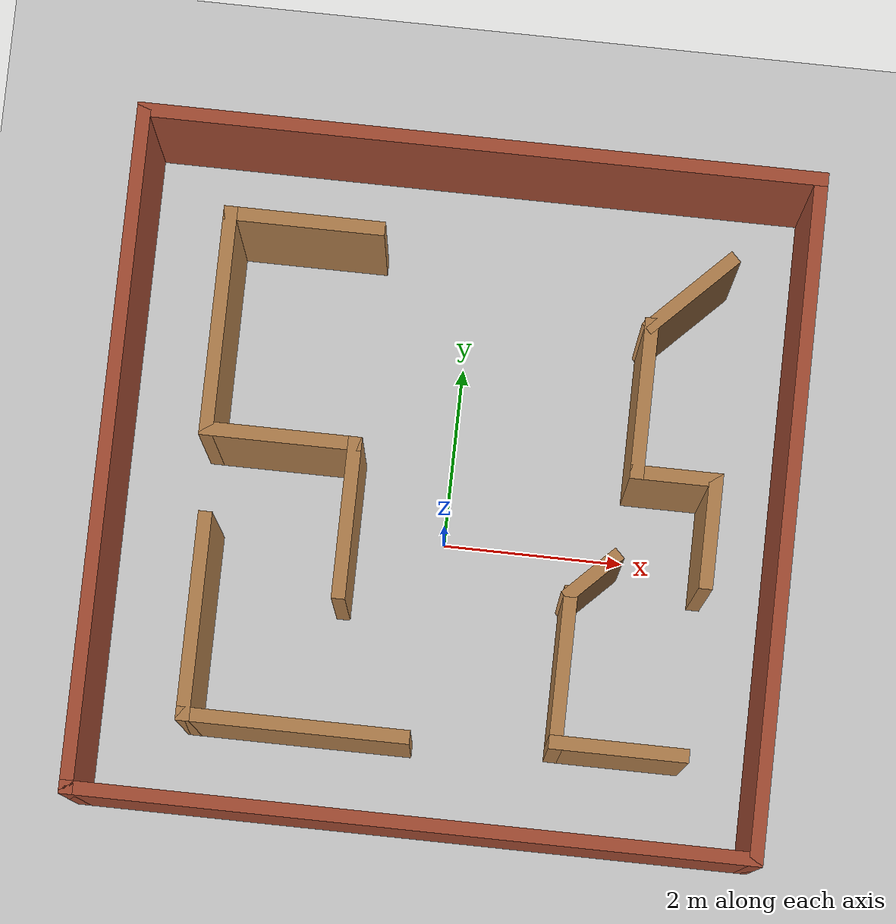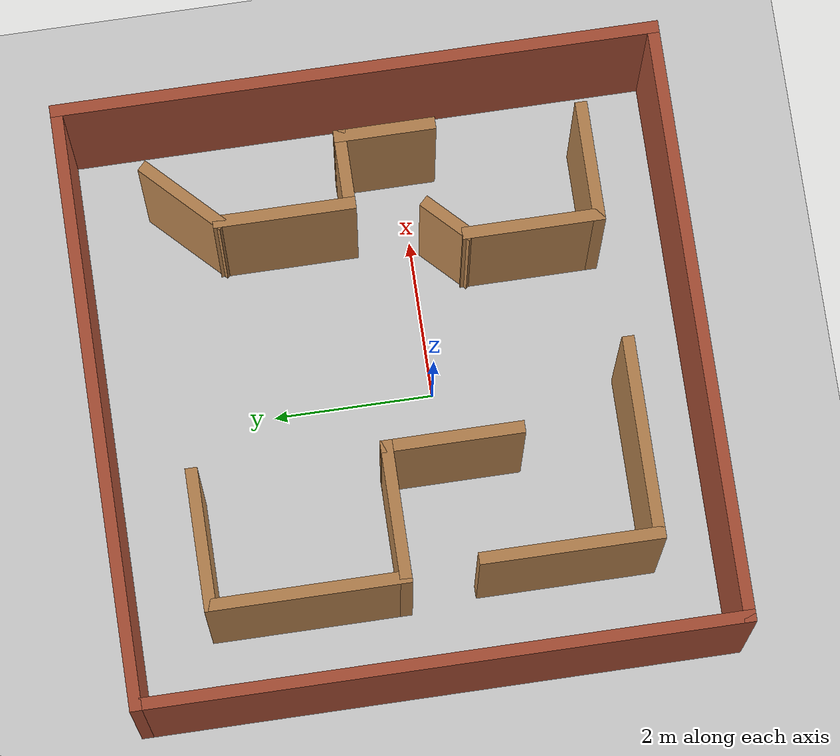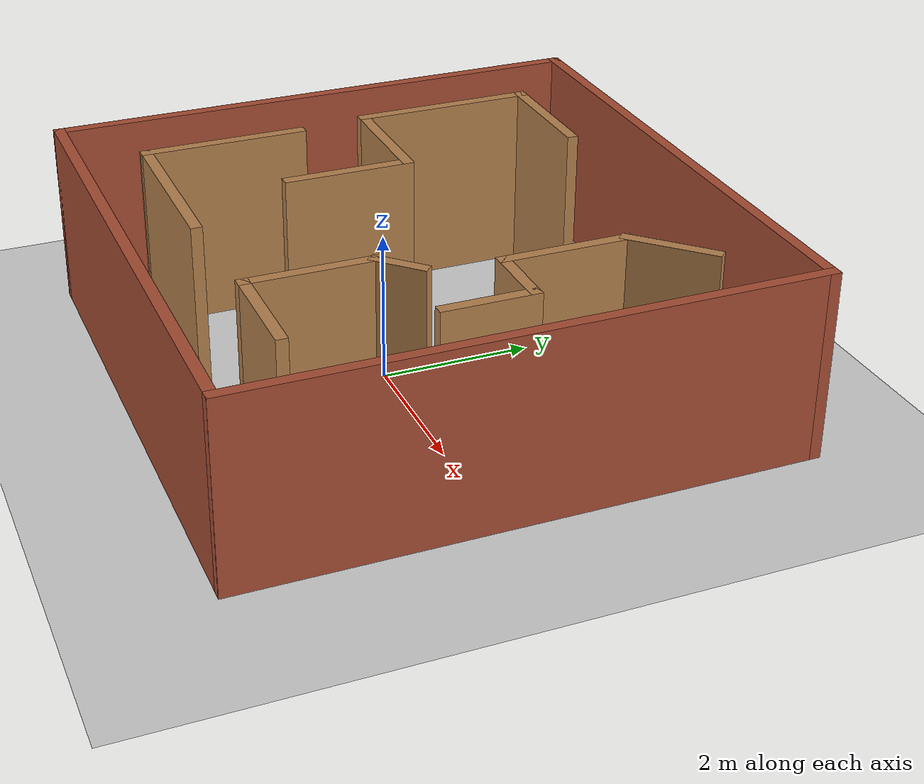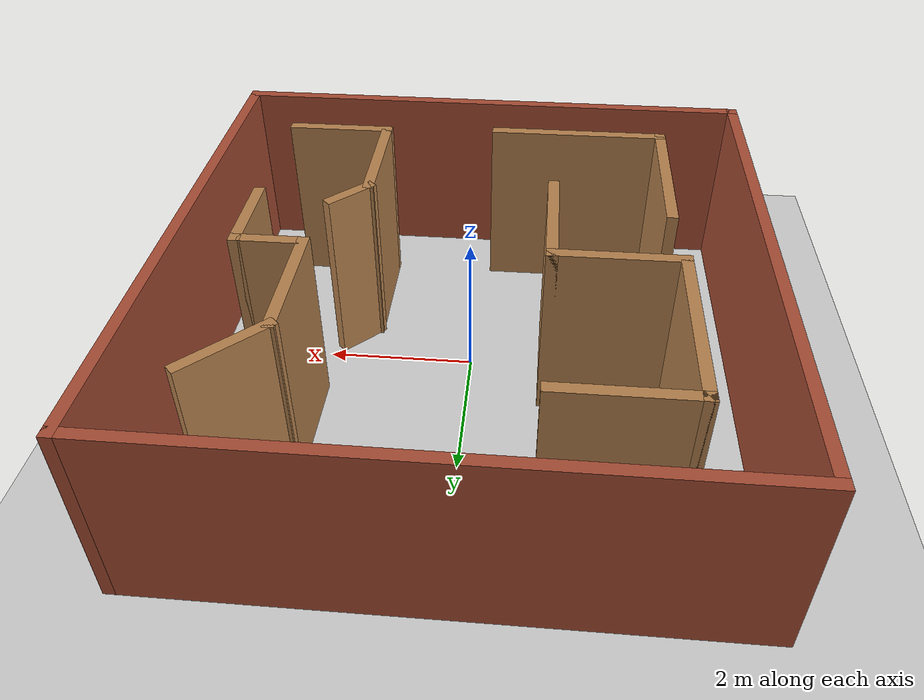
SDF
<sdf version="1.7">
 <world name="default">
  <light name="sun" type="directional">
   <pose>0 0 10 0 -0 0</pose>
   <diffuse>0.8 0.8 0.8 1</diffuse>
   <specular>0.2 0.2 0.2 1</specular>
   <attenuation>
    <range>1000</range>
    <constant>0.9</constant>
    <linear>0.01</linear>
    <quadratic>0.001</quadratic>
   </attenuation>
   <direction>-0.5 0.1 -0.9</direction>
   <spot><inner_angle>0</inner_angle><outer_angle>0</outer_angle><falloff>0</falloff></spot>
  </light>
  <model name="ground_plane">
   <static>1</static>
   <link name="link">
    <collision name="collision">
     <geometry><plane><normal>0 0 1</normal><size>100 100</size></plane></geometry>
     <surface><friction><ode><mu>100</mu><mu2>50</mu2></ode></friction></surface>
    </collision>
    <visual name="visual">
     <cast_shadows>0</cast_shadows>
     <geometry><plane><normal>0 0 1</normal><size>100 100</size></plane></geometry>
     <material>
      <script><uri>file://media/materials/scripts/gazebo.material</uri><name>Gazebo/Grey</name></script>
     </material>
    </visual>
   </link>
  </model>
  <gravity>0 0 -9.8</gravity>
  <magnetic_field>6e-06 2.3e-05 -4.2e-05</magnetic_field>
  <atmosphere type="adiabatic"/>
  <physics type="ode">
   <max_step_size>0.001</max_step_size>
   <real_time_factor>1</real_time_factor>
   <real_time_update_rate>1000</real_time_update_rate>
  </physics>
  <scene><ambient>0.4 0.4 0.4 1</ambient><background>0.7 0.7 0.7 1</background><shadows>1</shadows></scene>
  <audio><device>default</device></audio>
  <spherical_coordinates>
   <surface_model>EARTH_WGS84</surface_model>
   <latitude_deg>0</latitude_deg>
   <longitude_deg>0</longitude_deg>
   <elevation>0</elevation>
   <heading_deg>0</heading_deg>
  </spherical_coordinates>
  <model name="custom_world_2">
   <pose>-0.019893 0.439121 0 0 -0 0</pose>
   <link name="Wall_0">
    <collision name="Wall_0_Collision">
     <geometry><box><size>7.5 0.15 2.5</size></box></geometry>
     <pose>0 0 1.25 0 -0 0</pose>
    </collision>
    <visual name="Wall_0_Visual">
     <pose>0 0 1.25 0 -0 0</pose>
     <geometry><box><size>7.5 0.15 2.5</size></box></geometry>
     <material>
      <script><uri>file://media/materials/scripts/gazebo.material</uri><name>Gazebo/Bricks</name></script>
      <ambient>1 1 1 1</ambient>
     </material>
     <meta><layer>0</layer></meta>
    </visual>
    <pose>0 -3.675 0 0 -0 0</pose>
   </link>
   <link name="Wall_1">
    <collision name="Wall_1_Collision">
     <geometry><box><size>7.5 0.15 2.5</size></box></geometry>
     <pose>0 0 1.25 0 -0 0</pose>
    </collision>
    <visual name="Wall_1_Visual">
     <pose>0 0 1.25 0 -0 0</pose>
     <geometry><box><size>7.5 0.15 2.5</size></box></geometry>
     <material>
      <script><uri>file://media/materials/scripts/gazebo.material</uri><name>Gazebo/Bricks</name></script>
      <ambient>1 1 1 1</ambient>
     </material>
     <meta><layer>0</layer></meta>
    </visual>
    <pose>3.675 0 0 0 -0 1.5708</pose>
   </link>
   <link name="Wall_14">
    <collision name="Wall_14_Collision">
     <geometry><box><size>2.5 0.15 2.5</size></box></geometry>
     <pose>0 0 1.25 0 -0 0</pose>
    </collision>
    <visual name="Wall_14_Visual">
     <pose>0 0 1.25 0 -0 0</pose>
     <geometry><box><size>2.5 0.15 2.5</size></box></geometry>
     <material>
      <script><uri>file://media/materials/scripts/gazebo.material</uri><name>Gazebo/Wood</name></script>
      <ambient>1 1 1 1</ambient>
     </material>
     <meta><layer>0</layer></meta>
    </visual>
    <pose>-2.62302 1.46619 0 0 -0 1.5708</pose>
   </link>
   <link name="Wall_15">
    <collision name="Wall_15_Collision">
     <geometry><box><size>1.75 0.15 2.5</size></box></geometry>
     <pose>0 0 1.25 0 -0 0</pose>
    </collision>
    <visual name="Wall_15_Visual">
     <pose>0 0 1.25 0 -0 0</pose>
     <geometry><box><size>1.75 0.15 2.5</size></box></geometry>
     <material>
      <script><uri>file://media/materials/scripts/gazebo.material</uri><name>Gazebo/Wood</name></script>
      <ambient>1 1 1 1</ambient>
     </material>
     <meta><layer>0</layer></meta>
    </visual>
    <pose>-1.82302 2.64119 0 0 -0 0</pose>
   </link>
   <link name="Wall_17">
    <collision name="Wall_17_Collision">
     <geometry><box><size>2.25 0.15 2.5</size></box></geometry>
     <pose>0 0 1.25 0 -0 0</pose>
    </collision>
    <visual name="Wall_17_Visual">
     <pose>0 0 1.25 0 -0 0</pose>
     <geometry><box><size>2.25 0.15 2.5</size></box></geometry>
     <material>
      <script><uri>file://media/materials/scripts/gazebo.material</uri><name>Gazebo/Wood</name></script>
      <ambient>1 1 1 1</ambient>
     </material>
     <meta><layer>0</layer></meta>
    </visual>
    <pose>-2.53125 -1.72343 0 0 -0 -1.5708</pose>
   </link>
   <link name="Wall_18">
    <collision name="Wall_18_Collision">
     <geometry><box><size>2.5 0.15 2.5</size></box></geometry>
     <pose>0 0 1.25 0 -0 0</pose>
    </collision>
    <visual name="Wall_18_Visual">
     <pose>0 0 1.25 0 -0 0</pose>
     <geometry><box><size>2.5 0.15 2.5</size></box></geometry>
     <material>
      <script><uri>file://media/materials/scripts/gazebo.material</uri><name>Gazebo/Wood</name></script>
      <ambient>1 1 1 1</ambient>
     </material>
     <meta><layer>0</layer></meta>
    </visual>
    <pose>-1.35625 -2.77343 0 0 -0 0</pose>
   </link>
   <link name="Wall_2">
    <collision name="Wall_2_Collision">
     <geometry><box><size>7.5 0.15 2.5</size></box></geometry>
     <pose>0 0 1.25 0 -0 0</pose>
    </collision>
    <visual name="Wall_2_Visual">
     <pose>0 0 1.25 0 -0 0</pose>
     <geometry><box><size>7.5 0.15 2.5</size></box></geometry>
     <material>
      <script><uri>file://media/materials/scripts/gazebo.material</uri><name>Gazebo/Bricks</name></script>
      <ambient>1 1 1 1</ambient>
     </material>
     <meta><layer>0</layer></meta>
    </visual>
    <pose>0 3.675 0 0 -0 3.14159</pose>
   </link>
   <link name="Wall_21">
    <collision name="Wall_21_Collision">
     <geometry><box><size>1.25 0.15 2.5</size></box></geometry>
     <pose>0 0 1.25 0 -0 0</pose>
    </collision>
    <visual name="Wall_21_Visual">
     <pose>0 0 1.25 0 -0 0</pose>
     <geometry><box><size>1.25 0.15 2.5</size></box></geometry>
     <material>
      <script><uri>file://media/materials/scripts/gazebo.material</uri><name>Gazebo/Wood</name></script>
      <ambient>1 1 1 1</ambient>
     </material>
     <meta><layer>0</layer></meta>
    </visual>
    <pose>2.39988 2.2916 0 0 -0 -2.35619</pose>
   </link>
   <link name="Wall_22">
    <collision name="Wall_22_Collision">
     <geometry><box><size>1.75 0.15 2.5</size></box></geometry>
     <pose>0 0 1.25 0 -0 0</pose>
    </collision>
    <visual name="Wall_22_Visual">
     <pose>0 0 1.25 0 -0 0</pose>
     <geometry><box><size>1.75 0.15 2.5</size></box></geometry>
     <material>
      <script><uri>file://media/materials/scripts/gazebo.material</uri><name>Gazebo/Wood</name></script>
      <ambient>1 1 1 1</ambient>
     </material>
     <meta><layer>0</layer></meta>
    </visual>
    <pose>2.01097 1.10269 0 0 -0 -1.5708</pose>
   </link>
   <link name="Wall_23">
    <collision name="Wall_23_Collision">
     <geometry><box><size>1 0.15 2.5</size></box></geometry>
     <pose>0 0 1.25 0 -0 0</pose>
    </collision>
    <visual name="Wall_23_Visual">
     <pose>0 0 1.25 0 -0 0</pose>
     <geometry><box><size>1 0.15 2.5</size></box></geometry>
     <material>
      <script><uri>file://media/materials/scripts/gazebo.material</uri><name>Gazebo/Wood</name></script>
      <ambient>1 1 1 1</ambient>
     </material>
     <meta><layer>0</layer></meta>
    </visual>
    <pose>2.43597 0.302688 0 0 -0 0</pose>
   </link>
   <link name="Wall_24">
    <collision name="Wall_24_Collision">
     <geometry><box><size>1.25 0.15 2.5</size></box></geometry>
     <pose>0 0 1.25 0 -0 0</pose>
    </collision>
    <visual name="Wall_24_Visual">
     <pose>0 0 1.25 0 -0 0</pose>
     <geometry><box><size>1.25 0.15 2.5</size></box></geometry>
     <material>
      <script><uri>file://media/materials/scripts/gazebo.material</uri><name>Gazebo/Wood</name></script>
      <ambient>1 1 1 1</ambient>
     </material>
     <meta><layer>0</layer></meta>
    </visual>
    <pose>2.86097 -0.247312 0 0 -0 -1.5708</pose>
   </link>
   <link name="Wall_26">
    <collision name="Wall_26_Collision">
     <geometry><box><size>1.5 0.15 2.5</size></box></geometry>
     <pose>0 0 1.25 0 -0 0</pose>
    </collision>
    <visual name="Wall_26_Visual">
     <pose>0 0 1.25 0 -0 0</pose>
     <geometry><box><size>1.5 0.15 2.5</size></box></geometry>
     <material>
      <script><uri>file://media/materials/scripts/gazebo.material</uri><name>Gazebo/Wood</name></script>
      <ambient>1 1 1 1</ambient>
     </material>
     <meta><layer>0</layer></meta>
    </visual>
    <pose>2.11379 -2.66267 0 0 -0 3.14159</pose>
   </link>
   <link name="Wall_27">
    <collision name="Wall_27_Collision">
     <geometry><box><size>1.75 0.15 2.5</size></box></geometry>
     <pose>0 0 1.25 0 -0 0</pose>
    </collision>
    <visual name="Wall_27_Visual">
     <pose>0 0 1.25 0 -0 0</pose>
     <geometry><box><size>1.75 0.15 2.5</size></box></geometry>
     <material>
      <script><uri>file://media/materials/scripts/gazebo.material</uri><name>Gazebo/Wood</name></script>
      <ambient>1 1 1 1</ambient>
     </material>
     <meta><layer>0</layer></meta>
    </visual>
    <pose>1.43879 -1.86267 0 0 -0 1.5708</pose>
   </link>
   <link name="Wall_28">
    <collision name="Wall_28_Collision">
     <geometry><box><size>0.75 0.15 2.5</size></box></geometry>
     <pose>0 0 1.25 0 -0 0</pose>
    </collision>
    <visual name="Wall_28_Visual">
     <pose>0 0 1.25 0 -0 0</pose>
     <geometry><box><size>0.75 0.15 2.5</size></box></geometry>
     <material>
      <script><uri>file://media/materials/scripts/gazebo.material</uri><name>Gazebo/Wood</name></script>
      <ambient>1 1 1 1</ambient>
     </material>
     <meta><layer>0</layer></meta>
    </visual>
    <pose>1.65092 -0.850533 0 0 -0 0.785398</pose>
   </link>
   <link name="Wall_3">
    <collision name="Wall_3_Collision">
     <geometry><box><size>7.5 0.15 2.5</size></box></geometry>
     <pose>0 0 1.25 0 -0 0</pose>
    </collision>
    <visual name="Wall_3_Visual">
     <pose>0 0 1.25 0 -0 0</pose>
     <geometry><box><size>7.5 0.15 2.5</size></box></geometry>
     <material>
      <script><uri>file://media/materials/scripts/gazebo.material</uri><name>Gazebo/Bricks</name></script>
      <ambient>1 1 1 1</ambient>
     </material>
     <meta><layer>0</layer></meta>
    </visual>
    <pose>-3.675 0 0 0 -0 -1.5708</pose>
   </link>
   <link name="Wall_8">
    <collision name="Wall_8_Collision">
     <geometry><box><size>1.75 0.15 2.5</size></box></geometry>
     <pose>0 0 1.25 0 -0 0</pose>
    </collision>
    <visual name="Wall_8_Visual">
     <pose>0 0 1.25 0 -0 0</pose>
     <geometry><box><size>1.75 0.15 2.5</size></box></geometry>
     <material>
      <script><uri>file://media/materials/scripts/gazebo.material</uri><name>Gazebo/Wood</name></script>
      <ambient>1 1 1 1</ambient>
     </material>
     <meta><layer>0</layer></meta>
    </visual>
    <pose>-1.82302 0.291193 0 0 -0 0</pose>
   </link>
   <link name="Wall_9">
    <collision name="Wall_9_Collision">
     <geometry><box><size>1.75 0.15 2.5</size></box></geometry>
     <pose>0 0 1.25 0 -0 0</pose>
    </collision>
    <visual name="Wall_9_Visual">
     <pose>0 0 1.25 0 -0 0</pose>
     <geometry><box><size>1.75 0.15 2.5</size></box></geometry>
     <material>
      <script><uri>file://media/materials/scripts/gazebo.material</uri><name>Gazebo/Wood</name></script>
      <ambient>1 1 1 1</ambient>
     </material>
     <meta><layer>0</layer></meta>
    </visual>
    <pose>-1.02302 -0.508807 0 0 -0 -1.5708</pose>
   </link>
   <static>1</static>
  </model>
 </world>
</sdf>
